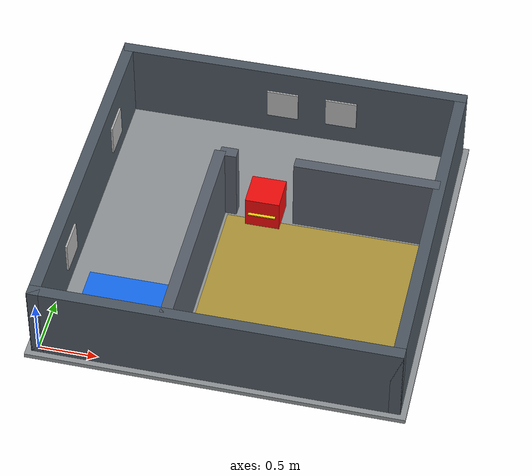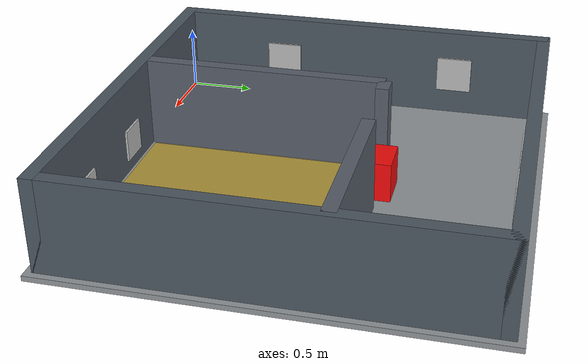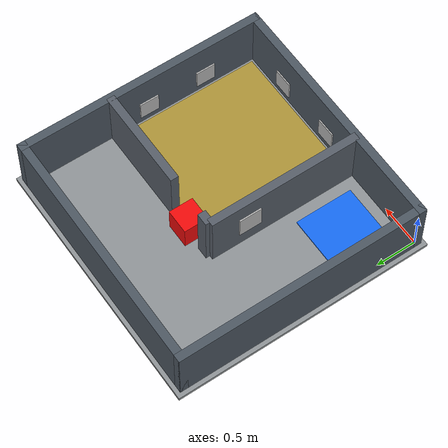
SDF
<?xml version="1.0"?>
<sdf version="1.6">
  <world name="rescue_world">
    <!-- Ground truth is published for independent acceptance measurements only;
         navigation and perception use lidar, camera, odometry and TF. -->
    <plugin name="evaluation_state" filename="libgazebo_ros_state.so">
      <ros><namespace>/evaluation</namespace></ros><update_rate>10</update_rate>
    </plugin>
    <physics name="competition_physics" type="ode">
      <max_step_size>0.002</max_step_size><real_time_factor>1.0</real_time_factor><real_time_update_rate>500</real_time_update_rate>
      <ode><solver><type>quick</type><iters>80</iters><sor>1.3</sor></solver><constraints><cfm>0.0</cfm><erp>0.2</erp><contact_max_correcting_vel>1.0</contact_max_correcting_vel><contact_surface_layer>0.001</contact_surface_layer></constraints></ode>
    </physics>
    <scene><ambient>0.55 0.55 0.55 1</ambient><background>0.12 0.15 0.18 1</background><shadows>true</shadows><grid>false</grid></scene>
    <light name="factory_light" type="directional"><cast_shadows>true</cast_shadows><pose>1.5 1.5 5 0 0 0</pose><diffuse>0.9 0.9 0.85 1</diffuse><specular>0.2 0.2 0.2 1</specular><direction>-0.3 0.2 -1</direction></light>

    <model name="factory_floor"><static>true</static><link name="floor">
      <collision name="collision"><geometry><box><size>3.2 3.2 0.04</size></box></geometry><surface><friction><ode><mu>1.0</mu><mu2>1.0</mu2></ode></friction></surface></collision>
      <visual name="visual"><geometry><box><size>3.2 3.2 0.04</size></box></geometry><material><ambient>0.40 0.42 0.43 1</ambient><diffuse>0.56 0.58 0.59 1</diffuse></material></visual>
    </link><pose>1.5 1.5 -0.02 0 0 0</pose></model>

    <model name="south_wall"><static>true</static><pose>1.5 0 0.35 0 0 0</pose><link name="wall"><collision name="collision"><geometry><box><size>3.1 0.10 0.70</size></box></geometry></collision><visual name="visual"><geometry><box><size>3.1 0.10 0.70</size></box></geometry><material><ambient>0.16 0.19 0.22 1</ambient><diffuse>0.30 0.34 0.38 1</diffuse></material></visual></link></model>
    <model name="north_wall"><static>true</static><pose>1.5 3 0.35 0 0 0</pose><link name="wall"><collision name="collision"><geometry><box><size>3.1 0.10 0.70</size></box></geometry></collision><visual name="visual"><geometry><box><size>3.1 0.10 0.70</size></box></geometry><material><ambient>0.16 0.19 0.22 1</ambient><diffuse>0.30 0.34 0.38 1</diffuse></material></visual></link></model>
    <model name="west_wall"><static>true</static><pose>0 1.5 0.35 0 0 0</pose><link name="wall"><collision name="collision"><geometry><box><size>0.10 3.1 0.70</size></box></geometry></collision><visual name="visual"><geometry><box><size>0.10 3.1 0.70</size></box></geometry><material><ambient>0.16 0.19 0.22 1</ambient><diffuse>0.30 0.34 0.38 1</diffuse></material></visual></link></model>
    <model name="east_wall"><static>true</static><pose>3 1.5 0.35 0 0 0</pose><link name="wall"><collision name="collision"><geometry><box><size>0.10 3.1 0.70</size></box></geometry></collision><visual name="visual"><geometry><box><size>0.10 3.1 0.70</size></box></geometry><material><ambient>0.16 0.19 0.22 1</ambient><diffuse>0.30 0.34 0.38 1</diffuse></material></visual></link></model>

    <model name="core_west_wall"><static>true</static><pose>1.10 0.95 0.35 0 0 0</pose><link name="wall"><collision name="collision"><geometry><box><size>0.10 1.90 0.70</size></box></geometry></collision><visual name="visual"><geometry><box><size>0.10 1.90 0.70</size></box></geometry><material><ambient>0.20 0.22 0.25 1</ambient><diffuse>0.34 0.37 0.41 1</diffuse></material></visual></link></model>
    <model name="core_north_left"><static>true</static><pose>1.175 1.90 0.35 0 0 0</pose><link name="wall"><collision name="collision"><geometry><box><size>0.15 0.10 0.70</size></box></geometry></collision><visual name="visual"><geometry><box><size>0.15 0.10 0.70</size></box></geometry><material><ambient>0.20 0.22 0.25 1</ambient><diffuse>0.34 0.37 0.41 1</diffuse></material></visual></link></model>
    <model name="core_north_right"><static>true</static><pose>2.375 1.90 0.35 0 0 0</pose><link name="wall"><collision name="collision"><geometry><box><size>1.25 0.10 0.70</size></box></geometry></collision><visual name="visual"><geometry><box><size>1.25 0.10 0.70</size></box></geometry><material><ambient>0.20 0.22 0.25 1</ambient><diffuse>0.34 0.37 0.41 1</diffuse></material></visual></link></model>

    <model name="start_zone"><static>true</static><pose>0.55 0.54 0.006 0 0 0</pose><link name="zone"><visual name="visual"><geometry><box><size>0.72 0.72 0.012</size></box></geometry><material><ambient>0.05 0.25 0.80 1</ambient><diffuse>0.08 0.42 0.95 1</diffuse></material></visual></link></model>
    <model name="core_zone"><static>true</static><pose>2.05 0.95 0.004 0 0 0</pose><link name="zone"><visual name="visual"><geometry><box><size>1.75 1.75 0.008</size></box></geometry><material><ambient>0.48 0.38 0.12 1</ambient><diffuse>0.68 0.58 0.22 1</diffuse></material></visual></link></model>

    <model name="push_barrier"><static>false</static><pose>1.50 1.90 0.15 0 0 0</pose><link name="barrier">
      <inertial><mass>2.0</mass><inertia><ixx>0.03</ixx><ixy>0</ixy><ixz>0</ixz><iyy>0.03</iyy><iyz>0</iyz><izz>0.03</izz></inertia></inertial>
      <velocity_decay><linear>0.10</linear><angular>0.20</angular></velocity_decay>
      <collision name="collision"><geometry><box><size>0.30 0.30 0.30</size></box></geometry><surface><friction><ode><mu>0.35</mu><mu2>0.35</mu2></ode></friction><contact><ode><kp>1000000</kp><kd>10</kd><min_depth>0.001</min_depth><max_vel>0.1</max_vel></ode></contact></surface></collision>
      <visual name="visual"><geometry><box><size>0.30 0.30 0.30</size></box></geometry><material><ambient>0.70 0.03 0.03 1</ambient><diffuse>0.95 0.04 0.04 1</diffuse></material></visual>
      <visual name="stripe"><pose>0 -0.151 0 1.5708 0 0</pose><geometry><box><size>0.24 0.01 0.05</size></box></geometry><material><ambient>1 0.75 0 1</ambient><diffuse>1 0.85 0.05 1</diffuse></material></visual>
    </link></model>

    <model name="hazard_fire"><static>true</static><pose>0.058 0.85 0.34 0 0 0</pose><link name="sign"><visual name="visual"><geometry><box><size>0.016 0.28 0.28</size></box></geometry><material><script><uri>model://rescue_course/materials/scripts</uri><uri>model://rescue_course/materials/textures</uri><name>AVS/HazardFire</name></script></material></visual></link></model>
    <model name="hazard_chemical"><static>true</static><pose>1.042 1.42 0.34 0 0 0</pose><link name="sign"><visual name="visual"><geometry><box><size>0.016 0.28 0.28</size></box></geometry><material><script><uri>model://rescue_course/materials/scripts</uri><uri>model://rescue_course/materials/textures</uri><name>AVS/HazardChemical</name></script></material></visual></link></model>
    <model name="hazard_radiation"><static>true</static><pose>0.058 2.30 0.34 0 0 0</pose><link name="sign"><visual name="visual"><geometry><box><size>0.016 0.28 0.28</size></box></geometry><material><script><uri>model://rescue_course/materials/scripts</uri><uri>model://rescue_course/materials/textures</uri><name>AVS/HazardRadiation</name></script></material></visual></link></model>
    <model name="hazard_electrical"><static>true</static><pose>1.42 2.942 0.34 0 0 0</pose><link name="sign"><visual name="visual"><geometry><box><size>0.28 0.016 0.28</size></box></geometry><material><script><uri>model://rescue_course/materials/scripts</uri><uri>model://rescue_course/materials/textures</uri><name>AVS/HazardElectrical</name></script></material></visual></link></model>
    <model name="hazard_biohazard"><static>true</static><pose>1.95 2.942 0.34 0 0 0</pose><link name="sign"><visual name="visual"><geometry><box><size>0.28 0.016 0.28</size></box></geometry><material><script><uri>model://rescue_course/materials/scripts</uri><uri>model://rescue_course/materials/textures</uri><name>AVS/HazardBiohazard</name></script></material></visual></link></model>

    <!-- The rover settles with a slight forward pitch.  At the mission's close
         observation poses, z=0.22 keeps each complete tag in the camera frame. -->
    <model name="core_tag_0"><static>true</static><pose>2.942 1.45 0.22 0 0 0</pose><link name="tag"><visual name="visual"><geometry><box><size>0.016 0.24 0.24</size></box></geometry><material><script><uri>model://rescue_course/materials/scripts</uri><uri>model://rescue_course/materials/textures</uri><name>AVS/AprilTag0</name></script></material></visual></link></model>
    <model name="core_tag_1"><static>true</static><pose>2.942 0.70 0.22 0 0 0</pose><link name="tag"><visual name="visual"><geometry><box><size>0.016 0.24 0.24</size></box></geometry><material><script><uri>model://rescue_course/materials/scripts</uri><uri>model://rescue_course/materials/textures</uri><name>AVS/AprilTag1</name></script></material></visual></link></model>
    <model name="core_tag_2"><static>true</static><pose>2.35 0.058 0.22 0 0 0</pose><link name="tag"><visual name="visual"><geometry><box><size>0.24 0.016 0.24</size></box></geometry><material><script><uri>model://rescue_course/materials/scripts</uri><uri>model://rescue_course/materials/textures</uri><name>AVS/AprilTag2</name></script></material></visual></link></model>
    <model name="core_tag_3"><static>true</static><pose>1.55 0.058 0.22 0 0 0</pose><link name="tag"><visual name="visual"><geometry><box><size>0.24 0.016 0.24</size></box></geometry><material><script><uri>model://rescue_course/materials/scripts</uri><uri>model://rescue_course/materials/textures</uri><name>AVS/AprilTag3</name></script></material></visual></link></model>

    <!-- Aim at the centre of the 3 x 3 m course, rather than beyond its north wall. -->
    <gui fullscreen="0"><camera name="overview"><pose>1.5 -1.8 4.8 0 0.969 1.5708</pose><view_controller>orbit</view_controller></camera></gui>
  </world>
</sdf>
